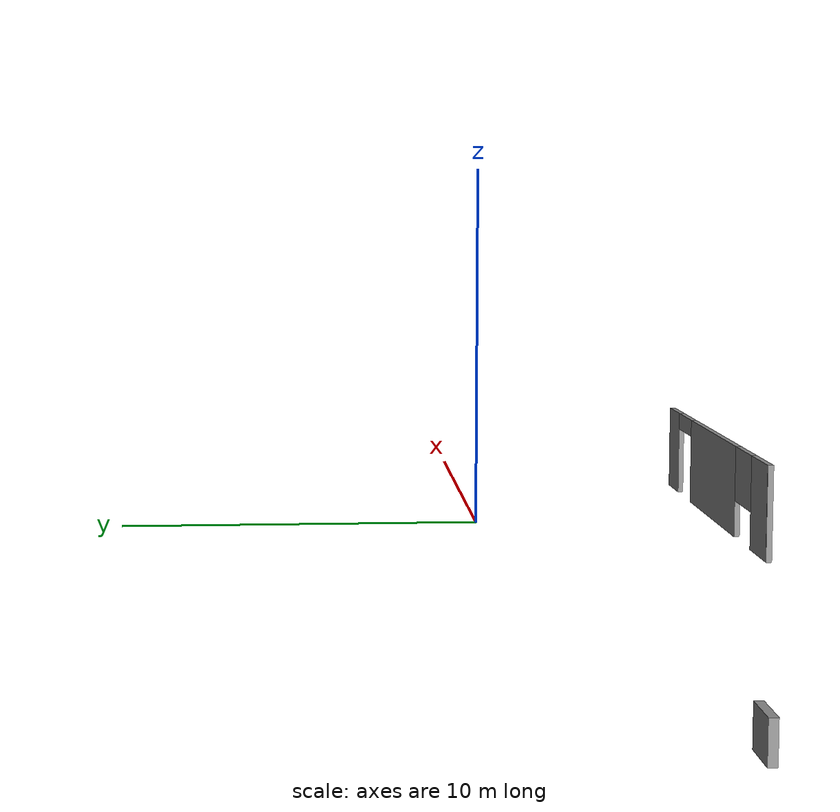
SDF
<?xml version='1.0'?>
<sdf version='1.6'>
  <model name='varying_doors1'>
    <pose frame=''>0.100084 -6.89082 0 0 -0 0</pose>
    <link name='Wall_7'>
      <pose frame=''>0.01315 0 0 0 -0 3.14159</pose>
      <visual name='Wall_7_Visual_0'>
        <pose frame=''>-4.64084 0 1.25 0 -0 0</pose>
        <geometry>
          <box>
            <size>1.21832 0.15 2.5</size>
          </box>
        </geometry>
        <material>
          <script>
            <uri>file://media/materials/scripts/gazebo.material</uri>
            <name>Gazebo/Grey</name>
          </script>
          <ambient>1 1 1 1</ambient>
        </material>
      </visual>
      <collision name='Wall_7_Collision_0'>
        <geometry>
          <box>
            <size>1.21832 0.15 2.5</size>
          </box>
        </geometry>
        <pose frame=''>-4.64084 0 1.25 0 -0 0</pose>
      </collision>
      <visual name='Wall_7_Visual_1'>
        <pose frame=''>-0.099298 0 1.25 0 -0 0</pose>
        <geometry>
          <box>
            <size>4.86476 0.15 2.5</size>
          </box>
        </geometry>
        <material>
          <script>
            <uri>file://media/materials/scripts/gazebo.material</uri>
            <name>Gazebo/Grey</name>
          </script>
          <ambient>1 1 1 1</ambient>
        </material>
      </visual>
      <collision name='Wall_7_Collision_1'>
        <geometry>
          <box>
            <size>4.86476 0.15 2.5</size>
          </box>
        </geometry>
        <pose frame=''>-0.099298 0 1.25 0 -0 0</pose>
      </collision>
      <visual name='Wall_7_Visual_2'>
        <pose frame=''>4.54154 0 1.25 0 -0 0</pose>
        <geometry>
          <box>
            <size>1.41692 0.15 2.5</size>
          </box>
        </geometry>
        <material>
          <script>
            <uri>file://media/materials/scripts/gazebo.material</uri>
            <name>Gazebo/Grey</name>
          </script>
          <ambient>1 1 1 1</ambient>
        </material>
      </visual>
      <collision name='Wall_7_Collision_2'>
        <geometry>
          <box>
            <size>1.41692 0.15 2.5</size>
          </box>
        </geometry>
        <pose frame=''>4.54154 0 1.25 0 -0 0</pose>
      </collision>
      <visual name='Wall_7_Visual_3'>
        <pose frame=''>3.08308 0 1.75 0 -0 0</pose>
        <geometry>
          <box>
            <size>1.5 0.15 1.5</size>
          </box>
        </geometry>
        <material>
          <script>
            <uri>file://media/materials/scripts/gazebo.material</uri>
            <name>Gazebo/Grey</name>
          </script>
          <ambient>1 1 1 1</ambient>
        </material>
      </visual>
      <collision name='Wall_7_Collision_3'>
        <geometry>
          <box>
            <size>1.5 0.15 1.5</size>
          </box>
        </geometry>
        <pose frame=''>3.08308 0 1.75 0 -0 0</pose>
      </collision>
      <visual name='Wall_7_Visual_4'>
        <pose frame=''>-3.28168 0 2.25 0 -0 0</pose>
        <geometry>
          <box>
            <size>1.5 0.15 0.5</size>
          </box>
        </geometry>
        <material>
          <script>
            <uri>file://media/materials/scripts/gazebo.material</uri>
            <name>Gazebo/Grey</name>
          </script>
          <ambient>1 1 1 1</ambient>
        </material>
      </visual>
      <collision name='Wall_7_Collision_4'>
        <geometry>
          <box>
            <size>1.5 0.15 0.5</size>
          </box>
        </geometry>
        <pose frame=''>-3.28168 0 2.25 0 -0 0</pose>
      </collision>
    </link>
    <link name='Wall_8'>
      <collision name='Wall_8_Collision'>
        <geometry>
          <box>
            <size>0.15 0.15 2.5</size>
          </box>
        </geometry>
        <pose frame=''>0 0 1.25 0 -0 0</pose>
      </collision>
      <visual name='Wall_8_Visual'>
        <pose frame=''>0 0 1.25 0 -0 0</pose>
        <geometry>
          <box>
            <size>0.15 0.15 2.5</size>
          </box>
        </geometry>
        <material>
          <script>
            <uri>file://media/materials/scripts/gazebo.material</uri>
            <name>Gazebo/Grey</name>
          </script>
          <ambient>1 1 1 1</ambient>
        </material>
      </visual>
      <pose frame=''>-5.18815 0 0 0 -0 0</pose>
    </link>
    <link name='Window_1'>
      <collision name='Window_1_Collision'>
        <geometry>
          <box>
            <size>0.8 0.17 0.8</size>
          </box>
        </geometry>
        <pose frame=''>0 0 0.4 0 -0 0</pose>
      </collision>
      <visual name='Window_1_Visual'>
        <pose frame=''>0 0 0.4 0 -0 0</pose>
        <geometry>
          <box>
            <size>0.8 0.17 0.8</size>
          </box>
        </geometry>
        <material>
          <script>
            <uri>file://media/materials/scripts/gazebo.material</uri>
            <name>Gazebo/Grey</name>
          </script>
        </material>
      </visual>
      <pose frame=''>-20.0075 4.53429 0.5 0 -0 0</pose>
    </link>
    <static>1</static>
  </model>
</sdf>
